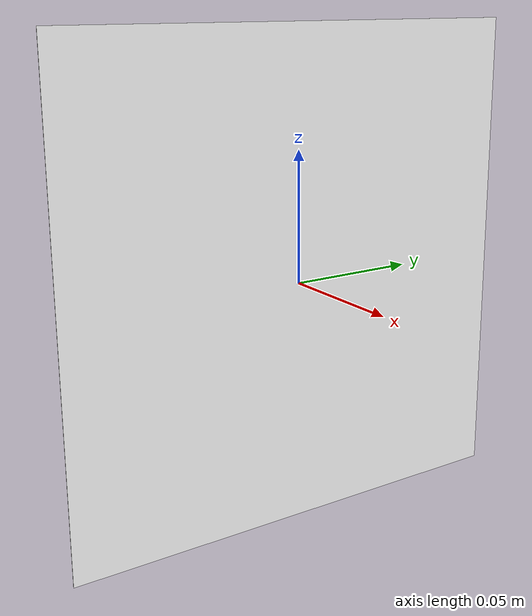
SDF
<?xml version="1.0"?>
<sdf version="1.6">
  <model name="aruco_marker">
    <static>true</static>
    <link name="marker_link">
      <!-- A white quiet zone makes the black ArUco border distinguishable
           from the Gazebo background, just like a printed marker on paper. -->
      <visual name="marker_backing">
        <pose>0 0 0 0 -1.57079632679 0</pose>
        <geometry>
          <plane>
            <normal>0 0 1</normal>
            <size>0.19 0.19</size>
          </plane>
        </geometry>
        <material>
          <lighting>false</lighting>
          <ambient>1 1 1 1</ambient>
          <diffuse>1 1 1 1</diffuse>
        </material>
      </visual>
      <visual name="marker_visual">
        <!-- Gazebo's plane is horizontal by default. Rotate it upright so the
             robot's forward-facing camera can see the marker. -->
        <pose>-0.001 0 0 0 -1.57079632679 0</pose>
        <geometry>
          <plane>
            <normal>0 0 1</normal>
            <size>0.15 0.15</size>
          </plane>
        </geometry>
        <material>
          <script>
            <uri>model://aruco_marker/materials/scripts</uri>
            <uri>model://aruco_marker/materials/textures</uri>
            <name>ArUco/Marker</name>
          </script>
        </material>
      </visual>
    </link>
  </model>
</sdf>
